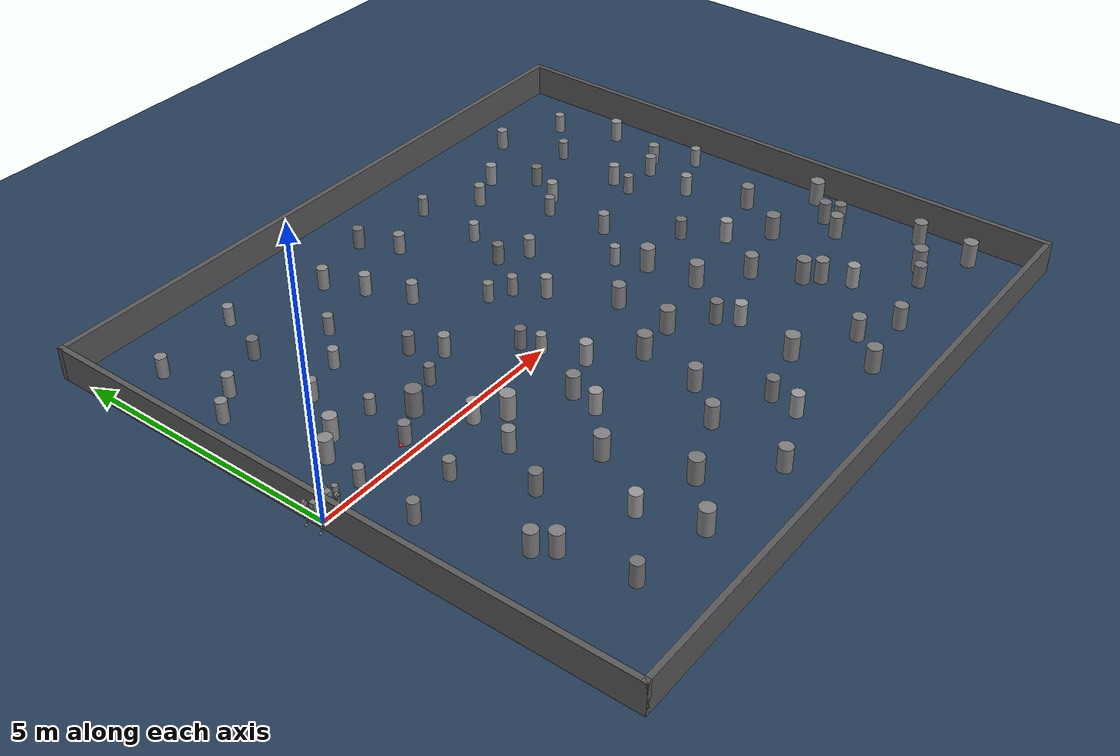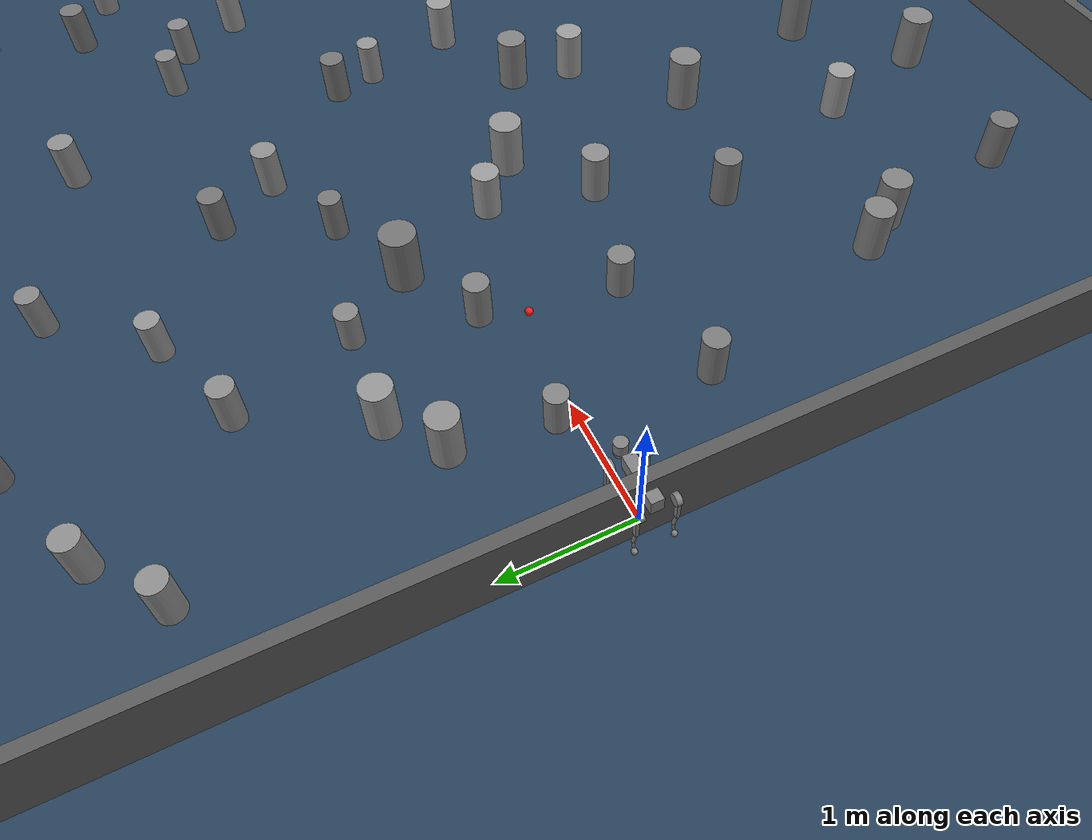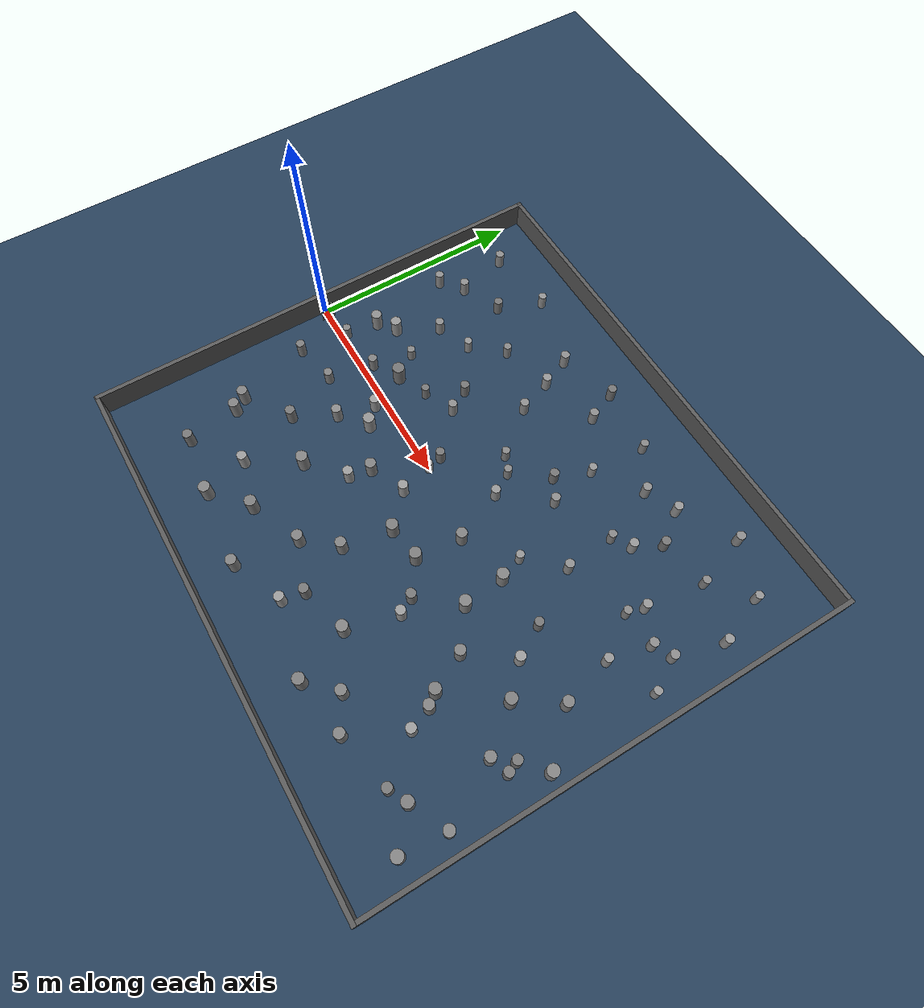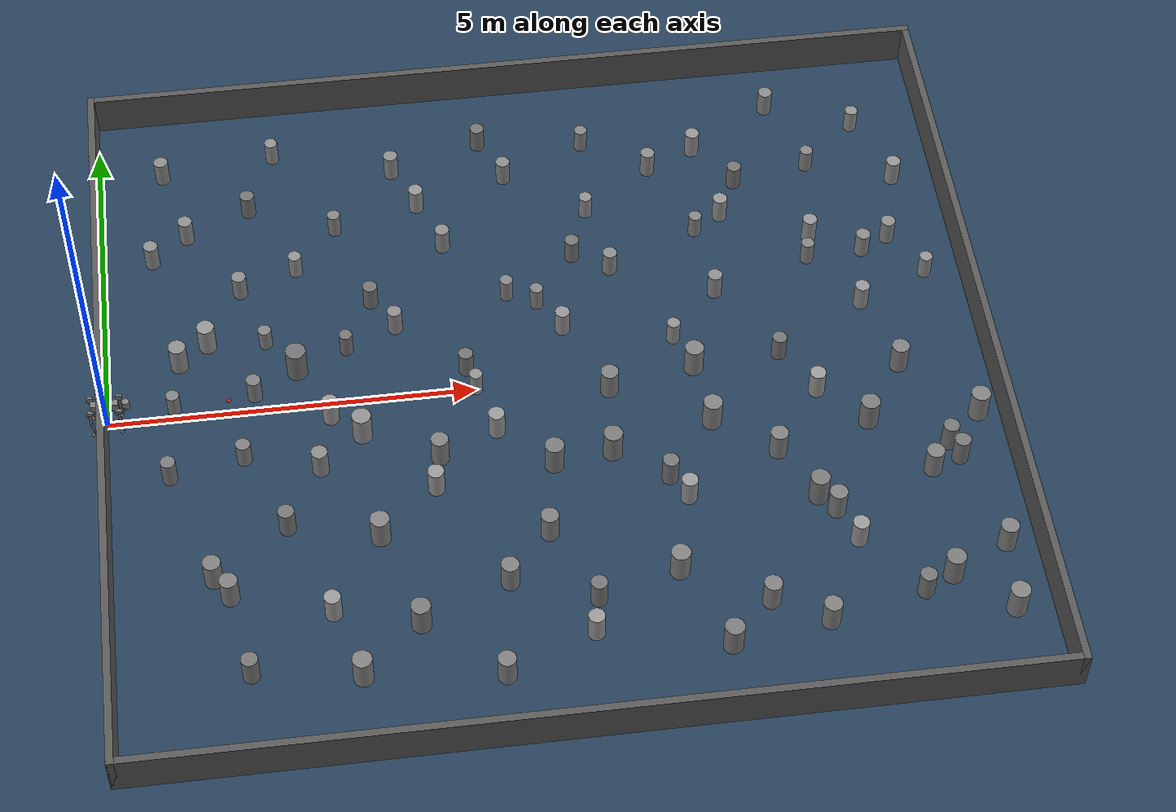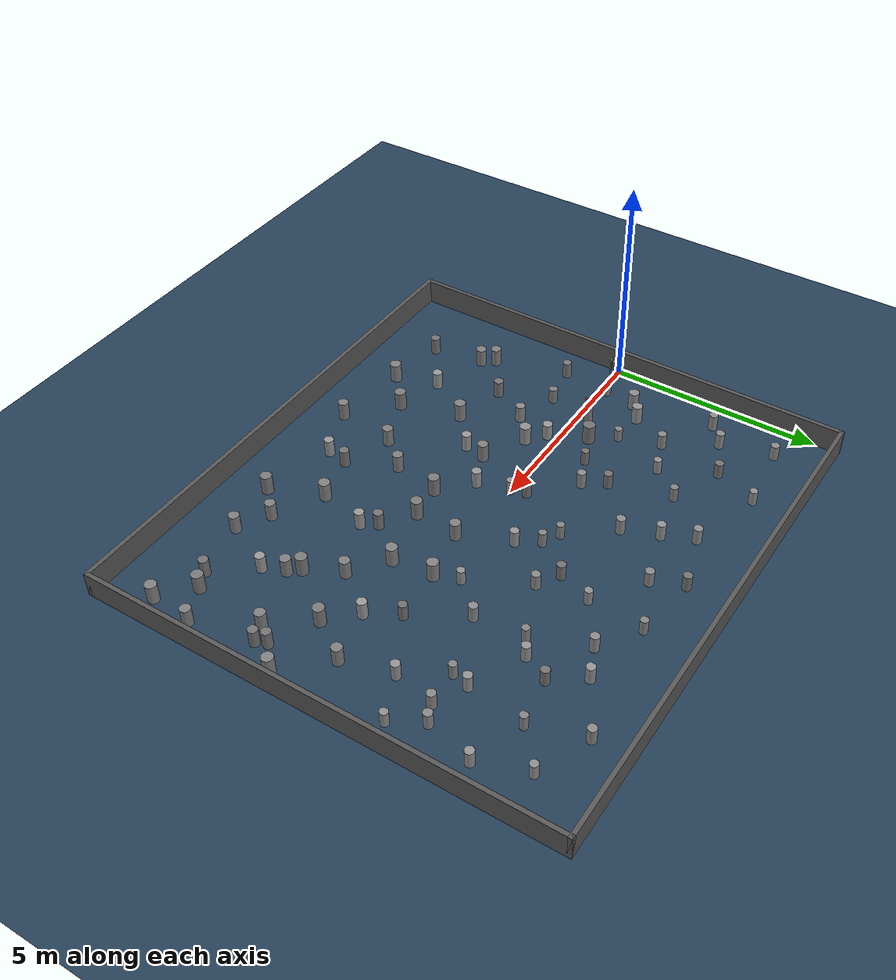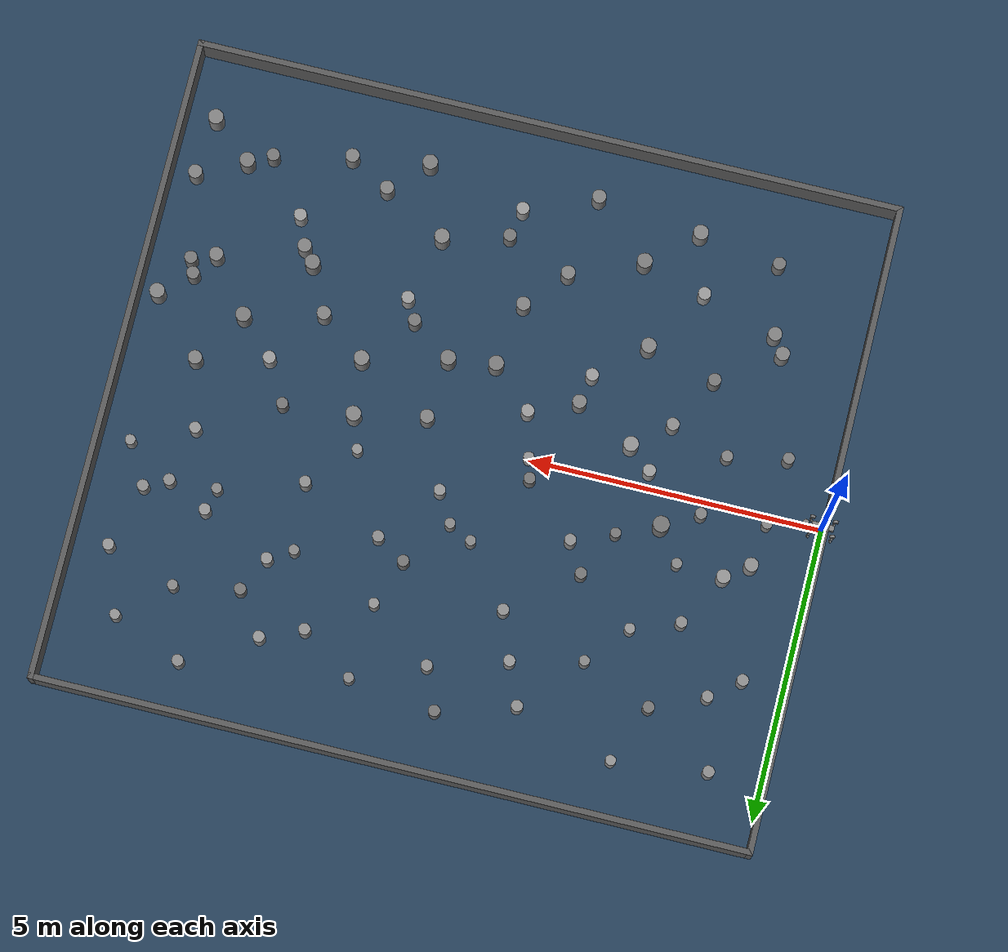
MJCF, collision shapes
<mujoco model="go2 scene">
  <include file="go2.xml" />

  <statistic center="0 0 0.15" extent="5.8" />

  <visual>
    <headlight diffuse="0.6 0.6 0.6" ambient="0.3 0.3 0.3" specular="0 0 0" />
    <rgba haze="0.15 0.25 0.35 1" />
    <global azimuth="-130" elevation="-20" />
  </visual>

  <asset>
    <texture type="skybox" builtin="gradient" rgb1="0.3 0.5 0.7" rgb2="0 0 0" width="512" height="3072" />
    <texture type="2d" name="groundplane" builtin="checker" mark="edge" rgb1="0.2 0.3 0.4" rgb2="0.1 0.2 0.3"
      markrgb="0.8 0.8 0.8" width="300" height="300" />
    <material name="groundplane" texture="groundplane" texuniform="true" texrepeat="5 5" reflectance="0.2" />
  </asset>

  <worldbody>
    <light pos="0 0 1.5" dir="0 0 -1" directional="true" />
    <geom name="floor" size="0 0 0.05" type="plane" material="groundplane" />
    <geom name="wall_north" pos="6.0 5.55 0.3" type="box" size="6.1 0.05 0.3" rgba="0.35 0.35 0.35 1" />
    <geom name="wall_south" pos="6.0 -5.55 0.3" type="box" size="6.1 0.05 0.3" rgba="0.35 0.35 0.35 1" />
    <geom name="wall_east" pos="12.05 0 0.3" type="box" size="0.05 5.6 0.3" rgba="0.35 0.35 0.35 1" />
    <geom name="wall_west" pos="-0.05 0 0.3" type="box" size="0.05 5.6 0.3" rgba="0.35 0.35 0.35 1" />

    <body name="moving_target" mocap="true" pos="1.65 0 0.30">
      <geom name="moving_target_geom" type="sphere" size="0.03" rgba="1 0.1 0.1 1" contype="0" conaffinity="0" />
    </body>

    <geom name="obstacle_cyl_0" pos="1.0 0.9 0.22" type="cylinder" size="0.12 0.22" rgba="0.55 0.55 0.55 1" />
    <geom name="obstacle_cyl_1" pos="1.8 -0.8 0.18" type="cylinder" size="0.1 0.18" rgba="0.5 0.5 0.5 1" />
    <geom name="obstacle_cyl_2" pos="2.6 0.6 0.24" type="cylinder" size="0.14 0.24" rgba="0.45 0.45 0.45 1" />
    <geom name="obstacle_cyl_3" pos="3.0 -0.25 0.2" type="cylinder" size="0.11 0.2" rgba="0.6 0.6 0.6 1" />
    <geom name="obstacle_cyl_4" pos="2.2 1.15 0.16" type="cylinder" size="0.09 0.16" rgba="0.52 0.52 0.52 1" />
    <geom name="obstacle_cyl_5" pos="0.8 -1.0 0.2" type="cylinder" size="0.1 0.2" rgba="0.48 0.48 0.48 1" />
    <geom name="obstacle_cyl_6" pos="1.4 1.2 0.22" type="cylinder" size="0.12 0.22" rgba="0.58 0.58 0.58 1" />
    <geom name="obstacle_cyl_7" pos="2.0 0.25 0.19" type="cylinder" size="0.1 0.19" rgba="0.5 0.5 0.5 1" />
    <geom name="obstacle_cyl_8" pos="2.8 -1.1 0.21" type="cylinder" size="0.11 0.21" rgba="0.54 0.54 0.54 1" />
    <geom name="obstacle_cyl_9" pos="3.3 0.9 0.18" type="cylinder" size="0.09 0.18" rgba="0.46 0.46 0.46 1" />
    <geom name="obstacle_cyl_10" pos="3.4 -0.6 0.23" type="cylinder" size="0.13 0.23" rgba="0.57 0.57 0.57 1" />
    <geom name="obstacle_cyl_11" pos="0.9 0.15 0.17" type="cylinder" size="0.09 0.17" rgba="0.51 0.51 0.51 1" />
    <geom name="obstacle_cyl_12" pos="4.0 1.2 0.2" type="cylinder" size="0.1 0.2" rgba="0.55 0.55 0.55 1" />
    <geom name="obstacle_cyl_13" pos="4.4 -1.1 0.22" type="cylinder" size="0.12 0.22" rgba="0.5 0.5 0.5 1" />
    <geom name="obstacle_cyl_14" pos="4.9 0.35 0.19" type="cylinder" size="0.1 0.19" rgba="0.45 0.45 0.45 1" />
    <geom name="obstacle_cyl_15" pos="5.2 -0.75 0.21" type="cylinder" size="0.11 0.21" rgba="0.6 0.6 0.6 1" />
    <geom name="obstacle_cyl_16" pos="5.6 1.6 0.18" type="cylinder" size="0.09 0.18" rgba="0.52 0.52 0.52 1" />
    <geom name="obstacle_cyl_17" pos="5.9 -1.4 0.23" type="cylinder" size="0.13 0.23" rgba="0.48 0.48 0.48 1" />
    <geom name="obstacle_cyl_18" pos="6.3 0.9 0.2" type="cylinder" size="0.1 0.2" rgba="0.58 0.58 0.58 1" />
    <geom name="obstacle_cyl_19" pos="6.8 -0.25 0.22" type="cylinder" size="0.12 0.22" rgba="0.5 0.5 0.5 1" />
    <geom name="obstacle_cyl_20" pos="7.1 1.9 0.19" type="cylinder" size="0.1 0.19" rgba="0.54 0.54 0.54 1" />
    <geom name="obstacle_cyl_21" pos="7.4 -1.8 0.21" type="cylinder" size="0.11 0.21" rgba="0.46 0.46 0.46 1" />
    <geom name="obstacle_cyl_22" pos="7.8 0.55 0.18" type="cylinder" size="0.09 0.18" rgba="0.57 0.57 0.57 1" />
    <geom name="obstacle_cyl_23" pos="8.1 -0.95 0.23" type="cylinder" size="0.13 0.23" rgba="0.51 0.51 0.51 1" />
    <geom name="obstacle_cyl_24" pos="8.5 1.3 0.2" type="cylinder" size="0.1 0.2" rgba="0.55 0.55 0.55 1" />
    <geom name="obstacle_cyl_25" pos="8.9 -1.55 0.22" type="cylinder" size="0.12 0.22" rgba="0.5 0.5 0.5 1" />
    <geom name="obstacle_cyl_26" pos="9.2 0.1 0.19" type="cylinder" size="0.1 0.19" rgba="0.45 0.45 0.45 1" />
    <geom name="obstacle_cyl_27" pos="9.6 -0.6 0.21" type="cylinder" size="0.11 0.21" rgba="0.6 0.6 0.6 1" />
    <geom name="obstacle_cyl_28" pos="9.9 1.75 0.18" type="cylinder" size="0.09 0.18" rgba="0.52 0.52 0.52 1" />
    <geom name="obstacle_cyl_29" pos="10.2 -1.2 0.23" type="cylinder" size="0.13 0.23" rgba="0.48 0.48 0.48 1" />
    <geom name="obstacle_cyl_30" pos="10.5 0.85 0.2" type="cylinder" size="0.1 0.2" rgba="0.58 0.58 0.58 1" />
    <geom name="obstacle_cyl_31" pos="10.8 -0.3 0.22" type="cylinder" size="0.12 0.22" rgba="0.5 0.5 0.5 1" />
    <geom name="obstacle_cyl_32" pos="11.1 2.0 0.19" type="cylinder" size="0.1 0.19" rgba="0.54 0.54 0.54 1" />
    <geom name="obstacle_cyl_33" pos="11.3 -1.95 0.21" type="cylinder" size="0.11 0.21" rgba="0.46 0.46 0.46 1" />
    <geom name="obstacle_cyl_34" pos="2.7 2.4 0.18" type="cylinder" size="0.09 0.18" rgba="0.57 0.57 0.57 1" />
    <geom name="obstacle_cyl_35" pos="3.5 -2.3 0.23" type="cylinder" size="0.13 0.23" rgba="0.51 0.51 0.51 1" />
    <geom name="obstacle_cyl_36" pos="4.8 2.6 0.2" type="cylinder" size="0.1 0.2" rgba="0.55 0.55 0.55 1" />
    <geom name="obstacle_cyl_37" pos="5.7 -2.5 0.22" type="cylinder" size="0.12 0.22" rgba="0.5 0.5 0.5 1" />
    <geom name="obstacle_cyl_38" pos="6.6 2.2 0.19" type="cylinder" size="0.1 0.19" rgba="0.45 0.45 0.45 1" />
    <geom name="obstacle_cyl_39" pos="7.6 -2.15 0.21" type="cylinder" size="0.11 0.21" rgba="0.6 0.6 0.6 1" />
    <geom name="obstacle_cyl_40" pos="8.4 2.45 0.18" type="cylinder" size="0.09 0.18" rgba="0.52 0.52 0.52 1" />
    <geom name="obstacle_cyl_41" pos="9.3 -2.35 0.23" type="cylinder" size="0.13 0.23" rgba="0.48 0.48 0.48 1" />
    <geom name="obstacle_cyl_42" pos="10.0 2.15 0.2" type="cylinder" size="0.1 0.2" rgba="0.58 0.58 0.58 1" />
    <geom name="obstacle_cyl_43" pos="10.9 -2.1 0.22" type="cylinder" size="0.12 0.22" rgba="0.5 0.5 0.5 1" />
    <geom name="obstacle_cyl_44" pos="1.9 2.1 0.19" type="cylinder" size="0.1 0.19" rgba="0.54 0.54 0.54 1" />
    <geom name="obstacle_cyl_45" pos="2.3 -2.0 0.21" type="cylinder" size="0.11 0.21" rgba="0.46 0.46 0.46 1" />
    <geom name="obstacle_cyl_46" pos="11.5 1.3 0.18" type="cylinder" size="0.09 0.18" rgba="0.57 0.57 0.57 1" />
    <geom name="obstacle_cyl_47" pos="11.7 -1.25 0.23" type="cylinder" size="0.13 0.23" rgba="0.51 0.51 0.51 1" />
    <geom name="obstacle_cyl_48" pos="1.2 3.2 0.2" type="cylinder" size="0.1 0.2" rgba="0.55 0.55 0.55 1" />
    <geom name="obstacle_cyl_49" pos="1.5 -3.0 0.22" type="cylinder" size="0.12 0.22" rgba="0.5 0.5 0.5 1" />
    <geom name="obstacle_cyl_50" pos="2.1 3.6 0.19" type="cylinder" size="0.1 0.19" rgba="0.45 0.45 0.45 1" />
    <geom name="obstacle_cyl_51" pos="2.8 -3.4 0.21" type="cylinder" size="0.11 0.21" rgba="0.6 0.6 0.6 1" />
    <geom name="obstacle_cyl_52" pos="3.3 3.1 0.18" type="cylinder" size="0.09 0.18" rgba="0.52 0.52 0.52 1" />
    <geom name="obstacle_cyl_53" pos="3.9 -3.7 0.23" type="cylinder" size="0.13 0.23" rgba="0.48 0.48 0.48 1" />
    <geom name="obstacle_cyl_54" pos="4.5 3.4 0.2" type="cylinder" size="0.1 0.2" rgba="0.58 0.58 0.58 1" />
    <geom name="obstacle_cyl_55" pos="5.1 -3.2 0.22" type="cylinder" size="0.12 0.22" rgba="0.5 0.5 0.5 1" />
    <geom name="obstacle_cyl_56" pos="5.8 3.8 0.19" type="cylinder" size="0.1 0.19" rgba="0.54 0.54 0.54 1" />
    <geom name="obstacle_cyl_57" pos="6.2 -3.6 0.21" type="cylinder" size="0.11 0.21" rgba="0.46 0.46 0.46 1" />
    <geom name="obstacle_cyl_58" pos="6.9 3.0 0.18" type="cylinder" size="0.09 0.18" rgba="0.57 0.57 0.57 1" />
    <geom name="obstacle_cyl_59" pos="7.3 -3.3 0.23" type="cylinder" size="0.13 0.23" rgba="0.51 0.51 0.51 1" />
    <geom name="obstacle_cyl_60" pos="7.9 3.7 0.2" type="cylinder" size="0.1 0.2" rgba="0.55 0.55 0.55 1" />
    <geom name="obstacle_cyl_61" pos="8.4 -3.9 0.22" type="cylinder" size="0.12 0.22" rgba="0.5 0.5 0.5 1" />
    <geom name="obstacle_cyl_62" pos="9.1 3.3 0.19" type="cylinder" size="0.1 0.19" rgba="0.45 0.45 0.45 1" />
    <geom name="obstacle_cyl_63" pos="9.7 -3.1 0.21" type="cylinder" size="0.11 0.21" rgba="0.6 0.6 0.6 1" />
    <geom name="obstacle_cyl_64" pos="10.2 3.5 0.18" type="cylinder" size="0.09 0.18" rgba="0.52 0.52 0.52 1" />
    <geom name="obstacle_cyl_65" pos="10.8 -3.8 0.23" type="cylinder" size="0.13 0.23" rgba="0.48 0.48 0.48 1" />
    <geom name="obstacle_cyl_66" pos="11.4 3.1 0.2" type="cylinder" size="0.1 0.2" rgba="0.58 0.58 0.58 1" />
    <geom name="obstacle_cyl_67" pos="11.6 -3.4 0.22" type="cylinder" size="0.12 0.22" rgba="0.5 0.5 0.5 1" />
    <geom name="obstacle_cyl_68" pos="0.9 4.4 0.19" type="cylinder" size="0.1 0.19" rgba="0.54 0.54 0.54 1" />
    <geom name="obstacle_cyl_69" pos="1.7 -4.2 0.21" type="cylinder" size="0.11 0.21" rgba="0.46 0.46 0.46 1" />
    <geom name="obstacle_cyl_70" pos="2.5 4.6 0.18" type="cylinder" size="0.09 0.18" rgba="0.57 0.57 0.57 1" />
    <geom name="obstacle_cyl_71" pos="3.1 -4.4 0.23" type="cylinder" size="0.13 0.23" rgba="0.51 0.51 0.51 1" />
    <geom name="obstacle_cyl_72" pos="4.2 4.1 0.2" type="cylinder" size="0.1 0.2" rgba="0.55 0.55 0.55 1" />
    <geom name="obstacle_cyl_73" pos="4.9 -4.6 0.22" type="cylinder" size="0.12 0.22" rgba="0.5 0.5 0.5 1" />
    <geom name="obstacle_cyl_74" pos="5.5 4.5 0.19" type="cylinder" size="0.1 0.19" rgba="0.45 0.45 0.45 1" />
    <geom name="obstacle_cyl_75" pos="6.1 -4.1 0.21" type="cylinder" size="0.11 0.21" rgba="0.6 0.6 0.6 1" />
    <geom name="obstacle_cyl_76" pos="7.0 4.3 0.18" type="cylinder" size="0.09 0.18" rgba="0.52 0.52 0.52 1" />
    <geom name="obstacle_cyl_77" pos="7.8 -4.5 0.23" type="cylinder" size="0.13 0.23" rgba="0.48 0.48 0.48 1" />
    <geom name="obstacle_cyl_78" pos="8.6 4.0 0.2" type="cylinder" size="0.1 0.2" rgba="0.58 0.58 0.58 1" />
    <geom name="obstacle_cyl_79" pos="9.1 -4.3 0.22" type="cylinder" size="0.12 0.22" rgba="0.5 0.5 0.5 1" />
    <geom name="obstacle_cyl_80" pos="9.8 4.7 0.19" type="cylinder" size="0.1 0.19" rgba="0.54 0.54 0.54 1" />
    <geom name="obstacle_cyl_81" pos="10.4 -4.0 0.21" type="cylinder" size="0.11 0.21" rgba="0.46 0.46 0.46 1" />
    <geom name="obstacle_cyl_82" pos="11.0 4.2 0.18" type="cylinder" size="0.09 0.18" rgba="0.57 0.57 0.57 1" />
    <geom name="obstacle_cyl_83" pos="11.5 -4.4 0.23" type="cylinder" size="0.13 0.23" rgba="0.51 0.51 0.51 1" />
    <geom name="obstacle_cyl_84" pos="0.7 2.8 0.2" type="cylinder" size="0.1 0.2" rgba="0.55 0.55 0.55 1" />
    <geom name="obstacle_cyl_85" pos="1.3 -2.7 0.22" type="cylinder" size="0.12 0.22" rgba="0.5 0.5 0.5 1" />
    <geom name="obstacle_cyl_86" pos="3.7 1.7 0.19" type="cylinder" size="0.1 0.19" rgba="0.45 0.45 0.45 1" />
    <geom name="obstacle_cyl_87" pos="4.3 -1.6 0.21" type="cylinder" size="0.11 0.21" rgba="0.6 0.6 0.6 1" />
    <geom name="obstacle_cyl_88" pos="6.0 1.4 0.18" type="cylinder" size="0.09 0.18" rgba="0.52 0.52 0.52 1" />
    <geom name="obstacle_cyl_89" pos="6.7 -1.3 0.23" type="cylinder" size="0.13 0.23" rgba="0.48 0.48 0.48 1" />
    <geom name="obstacle_cyl_90" pos="8.8 2.7 0.2" type="cylinder" size="0.1 0.2" rgba="0.58 0.58 0.58 1" />
    <geom name="obstacle_cyl_91" pos="9.5 -2.6 0.22" type="cylinder" size="0.12 0.22" rgba="0.5 0.5 0.5 1" />
    <geom name="obstacle_cyl_92" pos="10.7 1.8 0.19" type="cylinder" size="0.1 0.19" rgba="0.54 0.54 0.54 1" />
    <geom name="obstacle_cyl_93" pos="11.2 -1.7 0.21" type="cylinder" size="0.11 0.21" rgba="0.46 0.46 0.46 1" />
    <geom name="obstacle_cyl_94" pos="5.0 0.0 0.18" type="cylinder" size="0.09 0.18" rgba="0.57 0.57 0.57 1" />
    <geom name="obstacle_cyl_95" pos="8.0 0.0 0.23" type="cylinder" size="0.13 0.23" rgba="0.51 0.51 0.51 1" />
  </worldbody>
</mujoco>

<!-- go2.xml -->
<mujoco model="go2">
  <compiler angle="radian" meshdir="assets" autolimits="true" />

  <option cone="elliptic" impratio="100" timestep="0.001" />

  <default>

    <default class="go2">
      <geom friction="0.4" margin="0.001" condim="1"/>
      <joint axis="0 1 0" damping="0.1" armature="0.01" frictionloss="0.2"/>
      <motor ctrlrange="-23.7 23.7"/>

      <!-- 外展 -->
      <default class="abduction">
        <joint axis="1 0 0" range="-1.0472 1.0472"/>
      </default>

      <!-- 大腿关节 -->
      <default class="hip">
      <!-- 前大腿 -->
        <default class="front_hip">
          <joint range="-1.5708 3.4907"/>
        </default>
        <!-- 后大腿 -->
        <default class="back_hip">
          <joint range="-0.5236 4.5379"/>
        </default>
      </default>

      <!-- 小腿关节的 -->
      <default class="knee">
        <joint range="-2.7227 -0.83776"/>
        <motor ctrlrange="-45.43 45.43"/>
      </default>

      <default class="visual">
        <geom type="mesh" contype="0" conaffinity="0" group="2" rgba="1 1 1 1" />
      </default>
      <!-- 碰撞 -->
      <default class="collision">
        <geom group="3"/>
        <default class="foot">
          <geom size="0.022" pos="-0.002 0 -0.213" priority="1" condim="6"
            friction="0.4 0.02 0.01"/>
        </default>
      </default>
    </default>
  </default>

  <asset>
    <material name="metal" rgba=".9 .95 .95 1" />
    <material name="black" rgba="0 0 0 1" />
    <material name="white" rgba="1 1 1 1" />
    <material name="gray" rgba="0.671705 0.692426 0.774270 1" />

    <mesh file="base_0.obj" />
    <mesh file="base_1.obj" />
    <mesh file="base_2.obj" />
    <mesh file="base_3.obj" />
    <mesh file="base_4.obj" />
    <mesh file="hip_0.obj" />
    <mesh file="hip_1.obj" />
    <mesh file="thigh_0.obj" />
    <mesh file="thigh_1.obj" />
    <mesh file="thigh_mirror_0.obj" />
    <mesh file="thigh_mirror_1.obj" />
    <mesh file="calf_0.obj" />
    <mesh file="calf_1.obj" />
    <mesh file="calf_mirror_0.obj" />
    <mesh file="calf_mirror_1.obj" />
    <mesh file="foot.obj" />
  </asset>

  <worldbody>
    <body name="base_link" pos="0 0 0.445" childclass="go2">
    <camera name="camera1" pos="0.33 0 0"  resolution="160 120" euler="0 -1.57 -1.57" />
      <inertial pos="0.021112 0 -0.005366" quat="-0.000543471 0.713435 -0.00173769 0.700719"
        mass="6.921"
        diaginertia="0.107027 0.0980771 0.0244531" />
      <freejoint />
      <geom mesh="base_0" material="black" class="visual" />
      <geom mesh="base_1" material="black" class="visual" />
      <geom mesh="base_2" material="black" class="visual" />
      <geom mesh="base_3" material="white" class="visual" />
      <geom mesh="base_4" material="gray" class="visual" />
      <geom size="0.1881 0.04675 0.057" type="box" class="collision" />
      <geom size="0.05 0.045" pos="0.285 0 0.01" type="cylinder" class="collision" />
      <geom size="0.047" pos="0.293 0 -0.06" class="collision" />

   <site name="imu" pos="-0.02557 0 0.04232" />
      <site name="lidar_site_000" pos="0.14 0 0.12" size="0.003" zaxis="1.000000 0.000000 0" rgba="0 1 0 0.15" />
      <site name="lidar_site_001" pos="0.14 0 0.12" size="0.003" zaxis="0.997564 0.069756 0" rgba="0 1 0 0.15" />
      <site name="lidar_site_002" pos="0.14 0 0.12" size="0.003" zaxis="0.990268 0.139173 0" rgba="0 1 0 0.15" />
      <site name="lidar_site_003" pos="0.14 0 0.12" size="0.003" zaxis="0.978148 0.207912 0" rgba="0 1 0 0.15" />
      <site name="lidar_site_004" pos="0.14 0 0.12" size="0.003" zaxis="0.961262 0.275637 0" rgba="0 1 0 0.15" />
      <site name="lidar_site_005" pos="0.14 0 0.12" size="0.003" zaxis="0.939693 0.342020 0" rgba="0 1 0 0.15" />
      <site name="lidar_site_006" pos="0.14 0 0.12" size="0.003" zaxis="0.913545 0.406737 0" rgba="0 1 0 0.15" />
      <site name="lidar_site_007" pos="0.14 0 0.12" size="0.003" zaxis="0.882948 0.469472 0" rgba="0 1 0 0.15" />
      <site name="lidar_site_008" pos="0.14 0 0.12" size="0.003" zaxis="0.848048 0.529919 0" rgba="0 1 0 0.15" />
      <site name="lidar_site_009" pos="0.14 0 0.12" size="0.003" zaxis="0.809017 0.587785 0" rgba="0 1 0 0.15" />
      <site name="lidar_site_010" pos="0.14 0 0.12" size="0.003" zaxis="0.766044 0.642788 0" rgba="0 1 0 0.15" />
      <site name="lidar_site_011" pos="0.14 0 0.12" size="0.003" zaxis="0.719340 0.694658 0" rgba="0 1 0 0.15" />
      <site name="lidar_site_012" pos="0.14 0 0.12" size="0.003" zaxis="0.669131 0.743145 0" rgba="0 1 0 0.15" />
      <site name="lidar_site_013" pos="0.14 0 0.12" size="0.003" zaxis="0.615661 0.788011 0" rgba="0 1 0 0.15" />
      <site name="lidar_site_014" pos="0.14 0 0.12" size="0.003" zaxis="0.559193 0.829038 0" rgba="0 1 0 0.15" />
      <site name="lidar_site_015" pos="0.14 0 0.12" size="0.003" zaxis="0.500000 0.866025 0" rgba="0 1 0 0.15" />
      <site name="lidar_site_016" pos="0.14 0 0.12" size="0.003" zaxis="0.438371 0.898794 0" rgba="0 1 0 0.15" />
      <site name="lidar_site_017" pos="0.14 0 0.12" size="0.003" zaxis="0.374607 0.927184 0" rgba="0 1 0 0.15" />
      <site name="lidar_site_018" pos="0.14 0 0.12" size="0.003" zaxis="0.309017 0.951057 0" rgba="0 1 0 0.15" />
      <site name="lidar_site_019" pos="0.14 0 0.12" size="0.003" zaxis="0.241922 0.970296 0" rgba="0 1 0 0.15" />
      <site name="lidar_site_020" pos="0.14 0 0.12" size="0.003" zaxis="0.173648 0.984808 0" rgba="0 1 0 0.15" />
      <site name="lidar_site_021" pos="0.14 0 0.12" size="0.003" zaxis="0.104528 0.994522 0" rgba="0 1 0 0.15" />
      <site name="lidar_site_022" pos="0.14 0 0.12" size="0.003" zaxis="0.034899 0.999391 0" rgba="0 1 0 0.15" />
      <site name="lidar_site_023" pos="0.14 0 0.12" size="0.003" zaxis="-0.034899 0.999391 0" rgba="0 1 0 0.15" />
      <site name="lidar_site_024" pos="0.14 0 0.12" size="0.003" zaxis="-0.104528 0.994522 0" rgba="0 1 0 0.15" />
      <site name="lidar_site_025" pos="0.14 0 0.12" size="0.003" zaxis="-0.173648 0.984808 0" rgba="0 1 0 0.15" />
      <site name="lidar_site_026" pos="0.14 0 0.12" size="0.003" zaxis="-0.241922 0.970296 0" rgba="0 1 0 0.15" />
      <site name="lidar_site_027" pos="0.14 0 0.12" size="0.003" zaxis="-0.309017 0.951057 0" rgba="0 1 0 0.15" />
      <site name="lidar_site_028" pos="0.14 0 0.12" size="0.003" zaxis="-0.374607 0.927184 0" rgba="0 1 0 0.15" />
      <site name="lidar_site_029" pos="0.14 0 0.12" size="0.003" zaxis="-0.438371 0.898794 0" rgba="0 1 0 0.15" />
      <site name="lidar_site_030" pos="0.14 0 0.12" size="0.003" zaxis="-0.500000 0.866025 0" rgba="0 1 0 0.15" />
      <site name="lidar_site_031" pos="0.14 0 0.12" size="0.003" zaxis="-0.559193 0.829038 0" rgba="0 1 0 0.15" />
      <site name="lidar_site_032" pos="0.14 0 0.12" size="0.003" zaxis="-0.615661 0.788011 0" rgba="0 1 0 0.15" />
      <site name="lidar_site_033" pos="0.14 0 0.12" size="0.003" zaxis="-0.669131 0.743145 0" rgba="0 1 0 0.15" />
      <site name="lidar_site_034" pos="0.14 0 0.12" size="0.003" zaxis="-0.719340 0.694658 0" rgba="0 1 0 0.15" />
      <site name="lidar_site_035" pos="0.14 0 0.12" size="0.003" zaxis="-0.766044 0.642788 0" rgba="0 1 0 0.15" />
      <site name="lidar_site_036" pos="0.14 0 0.12" size="0.003" zaxis="-0.809017 0.587785 0" rgba="0 1 0 0.15" />
      <site name="lidar_site_037" pos="0.14 0 0.12" size="0.003" zaxis="-0.848048 0.529919 0" rgba="0 1 0 0.15" />
      <site name="lidar_site_038" pos="0.14 0 0.12" size="0.003" zaxis="-0.882948 0.469472 0" rgba="0 1 0 0.15" />
      <site name="lidar_site_039" pos="0.14 0 0.12" size="0.003" zaxis="-0.913545 0.406737 0" rgba="0 1 0 0.15" />
      <site name="lidar_site_040" pos="0.14 0 0.12" size="0.003" zaxis="-0.939693 0.342020 0" rgba="0 1 0 0.15" />
      <site name="lidar_site_041" pos="0.14 0 0.12" size="0.003" zaxis="-0.961262 0.275637 0" rgba="0 1 0 0.15" />
      <site name="lidar_site_042" pos="0.14 0 0.12" size="0.003" zaxis="-0.978148 0.207912 0" rgba="0 1 0 0.15" />
      <site name="lidar_site_043" pos="0.14 0 0.12" size="0.003" zaxis="-0.990268 0.139173 0" rgba="0 1 0 0.15" />
      <site name="lidar_site_044" pos="0.14 0 0.12" size="0.003" zaxis="-0.997564 0.069756 0" rgba="0 1 0 0.15" />
      <site name="lidar_site_045" pos="0.14 0 0.12" size="0.003" zaxis="-1.000000 0.000000 0" rgba="0 1 0 0.15" />
      <site name="lidar_site_046" pos="0.14 0 0.12" size="0.003" zaxis="-0.997564 -0.069756 0" rgba="0 1 0 0.15" />
      <site name="lidar_site_047" pos="0.14 0 0.12" size="0.003" zaxis="-0.990268 -0.139173 0" rgba="0 1 0 0.15" />
      <site name="lidar_site_048" pos="0.14 0 0.12" size="0.003" zaxis="-0.978148 -0.207912 0" rgba="0 1 0 0.15" />
      <site name="lidar_site_049" pos="0.14 0 0.12" size="0.003" zaxis="-0.961262 -0.275637 0" rgba="0 1 0 0.15" />
      <site name="lidar_site_050" pos="0.14 0 0.12" size="0.003" zaxis="-0.939693 -0.342020 0" rgba="0 1 0 0.15" />
      <site name="lidar_site_051" pos="0.14 0 0.12" size="0.003" zaxis="-0.913545 -0.406737 0" rgba="0 1 0 0.15" />
      <site name="lidar_site_052" pos="0.14 0 0.12" size="0.003" zaxis="-0.882948 -0.469472 0" rgba="0 1 0 0.15" />
      <site name="lidar_site_053" pos="0.14 0 0.12" size="0.003" zaxis="-0.848048 -0.529919 0" rgba="0 1 0 0.15" />
      <site name="lidar_site_054" pos="0.14 0 0.12" size="0.003" zaxis="-0.809017 -0.587785 0" rgba="0 1 0 0.15" />
      <site name="lidar_site_055" pos="0.14 0 0.12" size="0.003" zaxis="-0.766044 -0.642788 0" rgba="0 1 0 0.15" />
      <site name="lidar_site_056" pos="0.14 0 0.12" size="0.003" zaxis="-0.719340 -0.694658 0" rgba="0 1 0 0.15" />
      <site name="lidar_site_057" pos="0.14 0 0.12" size="0.003" zaxis="-0.669131 -0.743145 0" rgba="0 1 0 0.15" />
      <site name="lidar_site_058" pos="0.14 0 0.12" size="0.003" zaxis="-0.615661 -0.788011 0" rgba="0 1 0 0.15" />
      <site name="lidar_site_059" pos="0.14 0 0.12" size="0.003" zaxis="-0.559193 -0.829038 0" rgba="0 1 0 0.15" />
      <site name="lidar_site_060" pos="0.14 0 0.12" size="0.003" zaxis="-0.500000 -0.866025 0" rgba="0 1 0 0.15" />
      <site name="lidar_site_061" pos="0.14 0 0.12" size="0.003" zaxis="-0.438371 -0.898794 0" rgba="0 1 0 0.15" />
      <site name="lidar_site_062" pos="0.14 0 0.12" size="0.003" zaxis="-0.374607 -0.927184 0" rgba="0 1 0 0.15" />
      <site name="lidar_site_063" pos="0.14 0 0.12" size="0.003" zaxis="-0.309017 -0.951057 0" rgba="0 1 0 0.15" />
      <site name="lidar_site_064" pos="0.14 0 0.12" size="0.003" zaxis="-0.241922 -0.970296 0" rgba="0 1 0 0.15" />
      <site name="lidar_site_065" pos="0.14 0 0.12" size="0.003" zaxis="-0.173648 -0.984808 0" rgba="0 1 0 0.15" />
      <site name="lidar_site_066" pos="0.14 0 0.12" size="0.003" zaxis="-0.104528 -0.994522 0" rgba="0 1 0 0.15" />
      <site name="lidar_site_067" pos="0.14 0 0.12" size="0.003" zaxis="-0.034899 -0.999391 0" rgba="0 1 0 0.15" />
      <site name="lidar_site_068" pos="0.14 0 0.12" size="0.003" zaxis="0.034899 -0.999391 0" rgba="0 1 0 0.15" />
      <site name="lidar_site_069" pos="0.14 0 0.12" size="0.003" zaxis="0.104528 -0.994522 0" rgba="0 1 0 0.15" />
      <site name="lidar_site_070" pos="0.14 0 0.12" size="0.003" zaxis="0.173648 -0.984808 0" rgba="0 1 0 0.15" />
      <site name="lidar_site_071" pos="0.14 0 0.12" size="0.003" zaxis="0.241922 -0.970296 0" rgba="0 1 0 0.15" />
      <site name="lidar_site_072" pos="0.14 0 0.12" size="0.003" zaxis="0.309017 -0.951057 0" rgba="0 1 0 0.15" />
      <site name="lidar_site_073" pos="0.14 0 0.12" size="0.003" zaxis="0.374607 -0.927184 0" rgba="0 1 0 0.15" />
      <site name="lidar_site_074" pos="0.14 0 0.12" size="0.003" zaxis="0.438371 -0.898794 0" rgba="0 1 0 0.15" />
      <site name="lidar_site_075" pos="0.14 0 0.12" size="0.003" zaxis="0.500000 -0.866025 0" rgba="0 1 0 0.15" />
      <site name="lidar_site_076" pos="0.14 0 0.12" size="0.003" zaxis="0.559193 -0.829038 0" rgba="0 1 0 0.15" />
      <site name="lidar_site_077" pos="0.14 0 0.12" size="0.003" zaxis="0.615661 -0.788011 0" rgba="0 1 0 0.15" />
      <site name="lidar_site_078" pos="0.14 0 0.12" size="0.003" zaxis="0.669131 -0.743145 0" rgba="0 1 0 0.15" />
      <site name="lidar_site_079" pos="0.14 0 0.12" size="0.003" zaxis="0.719340 -0.694658 0" rgba="0 1 0 0.15" />
      <site name="lidar_site_080" pos="0.14 0 0.12" size="0.003" zaxis="0.766044 -0.642788 0" rgba="0 1 0 0.15" />
      <site name="lidar_site_081" pos="0.14 0 0.12" size="0.003" zaxis="0.809017 -0.587785 0" rgba="0 1 0 0.15" />
      <site name="lidar_site_082" pos="0.14 0 0.12" size="0.003" zaxis="0.848048 -0.529919 0" rgba="0 1 0 0.15" />
      <site name="lidar_site_083" pos="0.14 0 0.12" size="0.003" zaxis="0.882948 -0.469472 0" rgba="0 1 0 0.15" />
      <site name="lidar_site_084" pos="0.14 0 0.12" size="0.003" zaxis="0.913545 -0.406737 0" rgba="0 1 0 0.15" />
      <site name="lidar_site_085" pos="0.14 0 0.12" size="0.003" zaxis="0.939693 -0.342020 0" rgba="0 1 0 0.15" />
      <site name="lidar_site_086" pos="0.14 0 0.12" size="0.003" zaxis="0.961262 -0.275637 0" rgba="0 1 0 0.15" />
      <site name="lidar_site_087" pos="0.14 0 0.12" size="0.003" zaxis="0.978148 -0.207912 0" rgba="0 1 0 0.15" />
      <site name="lidar_site_088" pos="0.14 0 0.12" size="0.003" zaxis="0.990268 -0.139173 0" rgba="0 1 0 0.15" />
      <site name="lidar_site_089" pos="0.14 0 0.12" size="0.003" zaxis="0.997564 -0.069756 0" rgba="0 1 0 0.15" />
      <!-- 前左 -->
      <body name="FL_hip" pos="0.1934 0.0465 0">
        <inertial pos="-0.0054 0.00194 -0.000105" quat="0.497014 0.499245 0.505462 0.498237"
          mass="0.678"
          diaginertia="0.00088403 0.000596003 0.000479967" />
        <joint name="FL_hip_joint" class="abduction" />
        <geom mesh="hip_0" material="metal" class="visual" />
        <geom mesh="hip_1" material="gray" class="visual" />
        <geom size="0.046 0.02" pos="0 0.08 0" quat="1 1 0 0" type="cylinder" class="collision" />
        <body name="FL_thigh" pos="0 0.0955 0">
          <inertial pos="-0.00374 -0.0223 -0.0327" quat="0.829533 0.0847635 -0.0200632 0.551623"
            mass="1.152"
            diaginertia="0.00594973 0.00584149 0.000878787" />
          <joint name="FL_thigh_joint" class="front_hip" />
          <geom mesh="thigh_0" material="metal" class="visual" />
          <geom mesh="thigh_1" material="gray" class="visual" />
          <geom size="0.1065 0.01225 0.017" pos="0 0 -0.1065" quat="0.707107 0 0.707107 0"
            type="box" class="collision" />
          <body name="FL_calf" pos="0 0 -0.213">
            <inertial pos="0.00629595 -0.000622121 -0.141417"
              quat="0.710672 0.00154099 -0.00450087 0.703508"
              mass="0.241352" diaginertia="0.0014901 0.00146356 5.31397e-05" />
            <joint name="FL_calf_joint" class="knee" />
            <geom mesh="calf_0" material="gray" class="visual" />
            <geom mesh="calf_1" material="black" class="visual" />
            <geom size="0.012 0.06" pos="0.008 0 -0.06" quat="0.994493 0 -0.104807 0"
              type="cylinder" class="collision" />
            <geom size="0.011 0.0325" pos="0.02 0 -0.148" quat="0.999688 0 0.0249974 0"
              type="cylinder" class="collision" />
            <geom pos="0 0 -0.213" mesh="foot" class="visual" material="black" />
            <geom name="FL" class="foot" />
            <body name="FL_foot" pos="0 0 -0.213" />
          </body>
        </body>
      </body>
      <!-- 前右 -->
      <body name="FR_hip" pos="0.1934 -0.0465 0">
        <inertial pos="-0.0054 -0.00194 -0.000105" quat="0.498237 0.505462 0.499245 0.497014"
          mass="0.678"
          diaginertia="0.00088403 0.000596003 0.000479967" />
        <joint name="FR_hip_joint" class="abduction" />
        <geom mesh="hip_0" material="metal" class="visual" quat="4.63268e-05 1 0 0" />
        <geom mesh="hip_1" material="gray" class="visual" quat="4.63268e-05 1 0 0" />
        <geom size="0.046 0.02" pos="0 -0.08 0" quat="0.707107 0.707107 0 0" type="cylinder"
          class="collision" />
        <body name="FR_thigh" pos="0 -0.0955 0">
          <inertial pos="-0.00374 0.0223 -0.0327" quat="0.551623 -0.0200632 0.0847635 0.829533"
            mass="1.152"
            diaginertia="0.00594973 0.00584149 0.000878787" />
          <joint name="FR_thigh_joint" class="front_hip" />
          <geom mesh="thigh_mirror_0" material="metal" class="visual" />
          <geom mesh="thigh_mirror_1" material="gray" class="visual" />
          <geom size="0.1065 0.01225 0.017" pos="0 0 -0.1065" quat="0.707107 0 0.707107 0"
            type="box" class="collision" />
          <body name="FR_calf" pos="0 0 -0.213">
            <inertial pos="0.00629595 0.000622121 -0.141417"
              quat="0.703508 -0.00450087 0.00154099 0.710672"
              mass="0.241352" diaginertia="0.0014901 0.00146356 5.31397e-05" />
            <joint name="FR_calf_joint" class="knee" />
            <geom mesh="calf_mirror_0" material="gray" class="visual" />
            <geom mesh="calf_mirror_1" material="black" class="visual" />
            <geom size="0.013 0.06" pos="0.01 0 -0.06" quat="0.995004 0 -0.0998334 0"
              type="cylinder" class="collision" />
            <geom size="0.011 0.0325" pos="0.02 0 -0.148" quat="0.999688 0 0.0249974 0"
              type="cylinder" class="collision" />
            <geom pos="0 0 -0.213" mesh="foot" class="visual" material="black" />
            <geom name="FR" class="foot" />
            <body name="FR_foot" pos="0 0 -0.213" />
          </body>
        </body>
      </body>
      <!-- 后左 -->
      <body name="RL_hip" pos="-0.1934 0.0465 0">
        <inertial pos="0.0054 0.00194 -0.000105" quat="0.505462 0.498237 0.497014 0.499245"
          mass="0.678"
          diaginertia="0.00088403 0.000596003 0.000479967" />
        <joint name="RL_hip_joint" class="abduction" />
        <geom mesh="hip_0" material="metal" class="visual" quat="4.63268e-05 0 1 0" />
        <geom mesh="hip_1" material="gray" class="visual" quat="4.63268e-05 0 1 0" />
        <geom size="0.046 0.02" pos="0 0.08 0" quat="0.707107 0.707107 0 0" type="cylinder"
          class="collision" />
        <body name="RL_thigh" pos="0 0.0955 0">
          <inertial pos="-0.00374 -0.0223 -0.0327" quat="0.829533 0.0847635 -0.0200632 0.551623"
            mass="1.152"
            diaginertia="0.00594973 0.00584149 0.000878787" />
          <joint name="RL_thigh_joint" class="back_hip" />
          <geom mesh="thigh_0" material="metal" class="visual" />
          <geom mesh="thigh_1" material="gray" class="visual" />
          <geom size="0.1065 0.01225 0.017" pos="0 0 -0.1065" quat="0.707107 0 0.707107 0"
            type="box" class="collision" />
          <body name="RL_calf" pos="0 0 -0.213">
            <inertial pos="0.00629595 -0.000622121 -0.141417"
              quat="0.710672 0.00154099 -0.00450087 0.703508"
              mass="0.241352" diaginertia="0.0014901 0.00146356 5.31397e-05" />
            <joint name="RL_calf_joint" class="knee" />
            <geom mesh="calf_0" material="gray" class="visual" />
            <geom mesh="calf_1" material="black" class="visual" />
            <geom size="0.013 0.06" pos="0.01 0 -0.06" quat="0.995004 0 -0.0998334 0"
              type="cylinder" class="collision" />
            <geom size="0.011 0.0325" pos="0.02 0 -0.148" quat="0.999688 0 0.0249974 0"
              type="cylinder" class="collision" />
            <geom pos="0 0 -0.213" mesh="foot" class="visual" material="black" />
            <geom name="RL" class="foot" />
            <body name="RL_foot" pos="0 0 -0.213" />
          </body>
        </body>
      </body>
      <!-- 后右边 -->
      <body name="RR_hip" pos="-0.1934 -0.0465 0">
        <inertial pos="0.0054 -0.00194 -0.000105" quat="0.499245 0.497014 0.498237 0.505462"
          mass="0.678"
          diaginertia="0.00088403 0.000596003 0.000479967" />
        <joint name="RR_hip_joint" class="abduction" />
        <geom mesh="hip_0" material="metal" class="visual"
          quat="2.14617e-09 4.63268e-05 4.63268e-05 -1" />
        <geom mesh="hip_1" material="gray" class="visual"
          quat="2.14617e-09 4.63268e-05 4.63268e-05 -1" />
        <geom size="0.046 0.02" pos="0 -0.08 0" quat="0.707107 0.707107 0 0" type="cylinder"
          class="collision" />
        <body name="RR_thigh" pos="0 -0.0955 0">
          <inertial pos="-0.00374 0.0223 -0.0327" quat="0.551623 -0.0200632 0.0847635 0.829533"
            mass="1.152"
            diaginertia="0.00594973 0.00584149 0.000878787" />
          <joint name="RR_thigh_joint" class="back_hip" />
          <geom mesh="thigh_mirror_0" material="metal" class="visual" />
          <geom mesh="thigh_mirror_1" material="gray" class="visual" />
          <geom size="0.1065 0.01225 0.017" pos="0 0 -0.1065" quat="0.707107 0 0.707107 0"
            type="box" class="collision" />
          <body name="RR_calf" pos="0 0 -0.213">
            <inertial pos="0.00629595 0.000622121 -0.141417"
              quat="0.703508 -0.00450087 0.00154099 0.710672"
              mass="0.241352" diaginertia="0.0014901 0.00146356 5.31397e-05" />
            <joint name="RR_calf_joint" class="knee" />
            <geom mesh="calf_mirror_0" material="gray" class="visual" />
            <geom mesh="calf_mirror_1" material="black" class="visual" />
            <geom size="0.013 0.06" pos="0.01 0 -0.06" quat="0.995004 0 -0.0998334 0"
              type="cylinder" class="collision" />
            <geom size="0.011 0.0325" pos="0.02 0 -0.148" quat="0.999688 0 0.0249974 0"
              type="cylinder" class="collision" />
            <geom pos="0 0 -0.213" mesh="foot" class="visual" material="black" />
            <geom name="RR" class="foot" />
            <body name="RR_foot" pos="0 0 -0.213" />
          </body>
        </body>
      </body>
    </body>
  </worldbody>

<!-- 控制器 -->
  <actuator>
    <motor class="abduction" name="FR_hip" joint="FR_hip_joint"  />
    <motor class="hip" name="FR_thigh" joint="FR_thigh_joint"   />
    <motor class="knee" name="FR_calf" joint="FR_calf_joint"  />
    <motor class="abduction" name="FL_hip" joint="FL_hip_joint"  />
    <motor class="hip" name="FL_thigh" joint="FL_thigh_joint"  />
    <motor class="knee" name="FL_calf" joint="FL_calf_joint"  />
    <motor class="abduction" name="RR_hip" joint="RR_hip_joint"  />
    <motor class="hip" name="RR_thigh" joint="RR_thigh_joint"  />
    <motor class="knee" name="RR_calf" joint="RR_calf_joint"  />
    <motor class="abduction" name="RL_hip" joint="RL_hip_joint"  />
    <motor class="hip" name="RL_thigh" joint="RL_thigh_joint"  />
    <motor class="knee" name="RL_calf" joint="RL_calf_joint" />
  </actuator>

  <sensor>
    <jointpos name="FR_hip_pos" joint="FR_hip_joint" />
    <jointpos name="FR_thigh_pos" joint="FR_thigh_joint" />
    <jointpos name="FR_calf_pos" joint="FR_calf_joint" />
    <jointpos name="FL_hip_pos" joint="FL_hip_joint" />
    <jointpos name="FL_thigh_pos" joint="FL_thigh_joint" />
    <jointpos name="FL_calf_pos" joint="FL_calf_joint" />
    <jointpos name="RR_hip_pos" joint="RR_hip_joint" />
    <jointpos name="RR_thigh_pos" joint="RR_thigh_joint" />
    <jointpos name="RR_calf_pos" joint="RR_calf_joint" />
    <jointpos name="RL_hip_pos" joint="RL_hip_joint" />
    <jointpos name="RL_thigh_pos" joint="RL_thigh_joint" />
    <jointpos name="RL_calf_pos" joint="RL_calf_joint" />

    <jointvel name="FR_hip_vel" joint="FR_hip_joint" />
    <jointvel name="FR_thigh_vel" joint="FR_thigh_joint" />
    <jointvel name="FR_calf_vel" joint="FR_calf_joint" />
    <jointvel name="FL_hip_vel" joint="FL_hip_joint" />
    <jointvel name="FL_thigh_vel" joint="FL_thigh_joint" />
    <jointvel name="FL_calf_vel" joint="FL_calf_joint" />
    <jointvel name="RR_hip_vel" joint="RR_hip_joint" />
    <jointvel name="RR_thigh_vel" joint="RR_thigh_joint" />
    <jointvel name="RR_calf_vel" joint="RR_calf_joint" />
    <jointvel name="RL_hip_vel" joint="RL_hip_joint" />
    <jointvel name="RL_thigh_vel" joint="RL_thigh_joint" />
    <jointvel name="RL_calf_vel" joint="RL_calf_joint" />

    <jointactuatorfrc name="FR_hip_torque" joint="FR_hip_joint" noise="0.01" />
    <jointactuatorfrc name="FR_thigh_torque" joint="FR_thigh_joint" noise="0.01" />
    <jointactuatorfrc name="FR_calf_torque" joint="FR_calf_joint" noise="0.01" />
    <jointactuatorfrc name="FL_hip_torque" joint="FL_hip_joint" noise="0.01" />
    <jointactuatorfrc name="FL_thigh_torque" joint="FL_thigh_joint" noise="0.01" />
    <jointactuatorfrc name="FL_calf_torque" joint="FL_calf_joint" noise="0.01" />
    <jointactuatorfrc name="RR_hip_torque" joint="RR_hip_joint" noise="0.01" />
    <jointactuatorfrc name="RR_thigh_torque" joint="RR_thigh_joint" noise="0.01" />
    <jointactuatorfrc name="RR_calf_torque" joint="RR_calf_joint" noise="0.01" />
    <jointactuatorfrc name="RL_hip_torque" joint="RL_hip_joint" noise="0.01" />
    <jointactuatorfrc name="RL_thigh_torque" joint="RL_thigh_joint" noise="0.01" />
    <jointactuatorfrc name="RL_calf_torque" joint="RL_calf_joint" noise="0.01" />

    <!-- 输出四元数 -->
    <framequat name="imu_quat" objtype="site" objname="imu" />
    <!-- 线加速度 -->
    <accelerometer name="imu_acc" site="imu"  />
    <!-- 角速度 -->
     <gyro name="imu_gyro" site="imu"  />
    <rangefinder name="lidar_000" site="lidar_site_000" />
    <rangefinder name="lidar_001" site="lidar_site_001" />
    <rangefinder name="lidar_002" site="lidar_site_002" />
    <rangefinder name="lidar_003" site="lidar_site_003" />
    <rangefinder name="lidar_004" site="lidar_site_004" />
    <rangefinder name="lidar_005" site="lidar_site_005" />
    <rangefinder name="lidar_006" site="lidar_site_006" />
    <rangefinder name="lidar_007" site="lidar_site_007" />
    <rangefinder name="lidar_008" site="lidar_site_008" />
    <rangefinder name="lidar_009" site="lidar_site_009" />
    <rangefinder name="lidar_010" site="lidar_site_010" />
    <rangefinder name="lidar_011" site="lidar_site_011" />
    <rangefinder name="lidar_012" site="lidar_site_012" />
    <rangefinder name="lidar_013" site="lidar_site_013" />
    <rangefinder name="lidar_014" site="lidar_site_014" />
    <rangefinder name="lidar_015" site="lidar_site_015" />
    <rangefinder name="lidar_016" site="lidar_site_016" />
    <rangefinder name="lidar_017" site="lidar_site_017" />
    <rangefinder name="lidar_018" site="lidar_site_018" />
    <rangefinder name="lidar_019" site="lidar_site_019" />
    <rangefinder name="lidar_020" site="lidar_site_020" />
    <rangefinder name="lidar_021" site="lidar_site_021" />
    <rangefinder name="lidar_022" site="lidar_site_022" />
    <rangefinder name="lidar_023" site="lidar_site_023" />
    <rangefinder name="lidar_024" site="lidar_site_024" />
    <rangefinder name="lidar_025" site="lidar_site_025" />
    <rangefinder name="lidar_026" site="lidar_site_026" />
    <rangefinder name="lidar_027" site="lidar_site_027" />
    <rangefinder name="lidar_028" site="lidar_site_028" />
    <rangefinder name="lidar_029" site="lidar_site_029" />
    <rangefinder name="lidar_030" site="lidar_site_030" />
    <rangefinder name="lidar_031" site="lidar_site_031" />
    <rangefinder name="lidar_032" site="lidar_site_032" />
    <rangefinder name="lidar_033" site="lidar_site_033" />
    <rangefinder name="lidar_034" site="lidar_site_034" />
    <rangefinder name="lidar_035" site="lidar_site_035" />
    <rangefinder name="lidar_036" site="lidar_site_036" />
    <rangefinder name="lidar_037" site="lidar_site_037" />
    <rangefinder name="lidar_038" site="lidar_site_038" />
    <rangefinder name="lidar_039" site="lidar_site_039" />
    <rangefinder name="lidar_040" site="lidar_site_040" />
    <rangefinder name="lidar_041" site="lidar_site_041" />
    <rangefinder name="lidar_042" site="lidar_site_042" />
    <rangefinder name="lidar_043" site="lidar_site_043" />
    <rangefinder name="lidar_044" site="lidar_site_044" />
    <rangefinder name="lidar_045" site="lidar_site_045" />
    <rangefinder name="lidar_046" site="lidar_site_046" />
    <rangefinder name="lidar_047" site="lidar_site_047" />
    <rangefinder name="lidar_048" site="lidar_site_048" />
    <rangefinder name="lidar_049" site="lidar_site_049" />
    <rangefinder name="lidar_050" site="lidar_site_050" />
    <rangefinder name="lidar_051" site="lidar_site_051" />
    <rangefinder name="lidar_052" site="lidar_site_052" />
    <rangefinder name="lidar_053" site="lidar_site_053" />
    <rangefinder name="lidar_054" site="lidar_site_054" />
    <rangefinder name="lidar_055" site="lidar_site_055" />
    <rangefinder name="lidar_056" site="lidar_site_056" />
    <rangefinder name="lidar_057" site="lidar_site_057" />
    <rangefinder name="lidar_058" site="lidar_site_058" />
    <rangefinder name="lidar_059" site="lidar_site_059" />
    <rangefinder name="lidar_060" site="lidar_site_060" />
    <rangefinder name="lidar_061" site="lidar_site_061" />
    <rangefinder name="lidar_062" site="lidar_site_062" />
    <rangefinder name="lidar_063" site="lidar_site_063" />
    <rangefinder name="lidar_064" site="lidar_site_064" />
    <rangefinder name="lidar_065" site="lidar_site_065" />
    <rangefinder name="lidar_066" site="lidar_site_066" />
    <rangefinder name="lidar_067" site="lidar_site_067" />
    <rangefinder name="lidar_068" site="lidar_site_068" />
    <rangefinder name="lidar_069" site="lidar_site_069" />
    <rangefinder name="lidar_070" site="lidar_site_070" />
    <rangefinder name="lidar_071" site="lidar_site_071" />
    <rangefinder name="lidar_072" site="lidar_site_072" />
    <rangefinder name="lidar_073" site="lidar_site_073" />
    <rangefinder name="lidar_074" site="lidar_site_074" />
    <rangefinder name="lidar_075" site="lidar_site_075" />
    <rangefinder name="lidar_076" site="lidar_site_076" />
    <rangefinder name="lidar_077" site="lidar_site_077" />
    <rangefinder name="lidar_078" site="lidar_site_078" />
    <rangefinder name="lidar_079" site="lidar_site_079" />
    <rangefinder name="lidar_080" site="lidar_site_080" />
    <rangefinder name="lidar_081" site="lidar_site_081" />
    <rangefinder name="lidar_082" site="lidar_site_082" />
    <rangefinder name="lidar_083" site="lidar_site_083" />
    <rangefinder name="lidar_084" site="lidar_site_084" />
    <rangefinder name="lidar_085" site="lidar_site_085" />
    <rangefinder name="lidar_086" site="lidar_site_086" />
    <rangefinder name="lidar_087" site="lidar_site_087" />
    <rangefinder name="lidar_088" site="lidar_site_088" />
    <rangefinder name="lidar_089" site="lidar_site_089" />

    <!-- 位置 -->
    <!-- 线速度 -->
  </sensor>

  <keyframe>
    <key name="home" qpos="1 0 0.27 1 0 0 0 0 0.9 -1.8 0 0.9 -1.8 0 0.9 -1.8 0 0.9 -1.8"
      ctrl="0 0.9 -1.8 0 0.9 -1.8 0 0.9 -1.8 0 0.9 -1.8" />
  </keyframe>
</mujoco>
